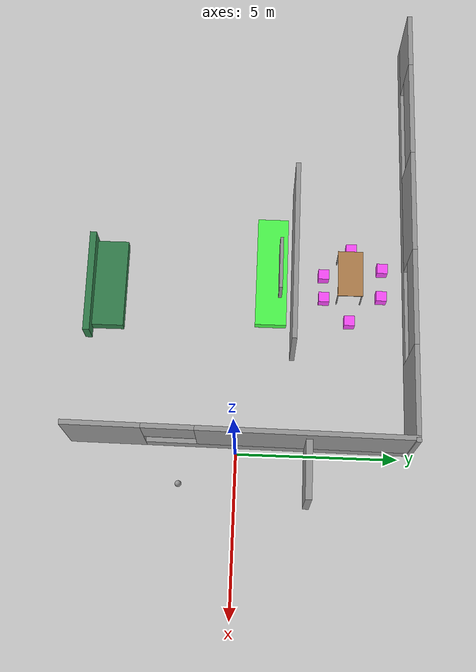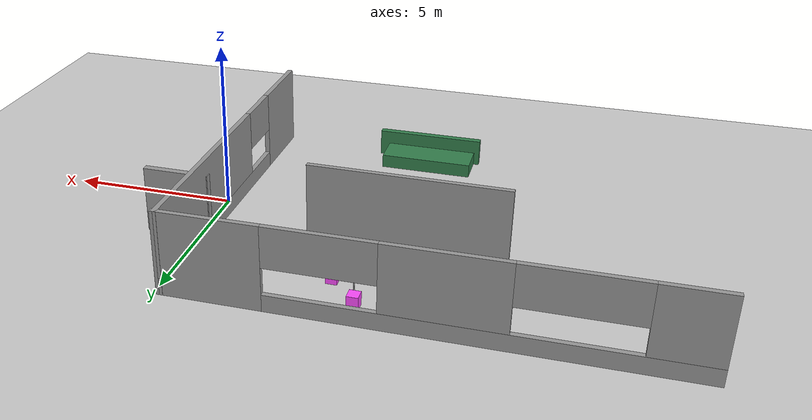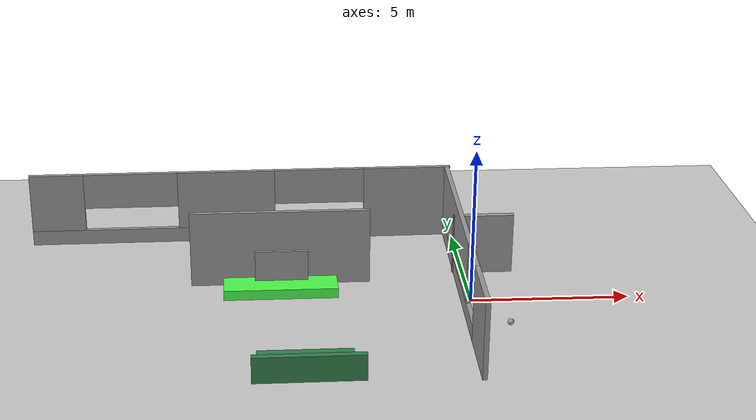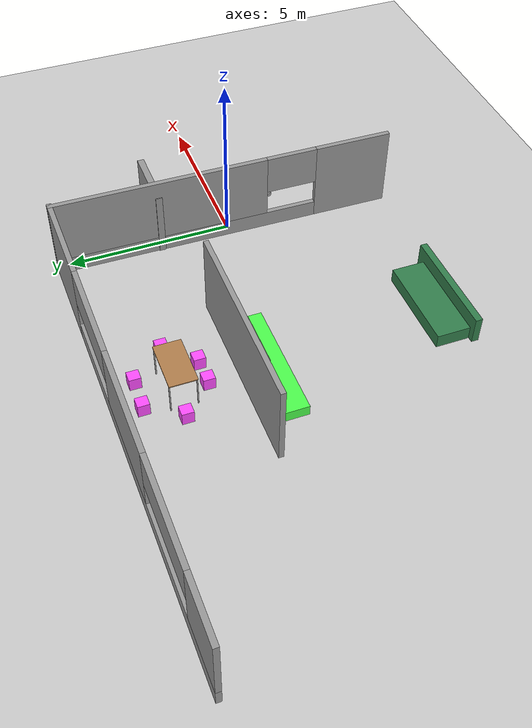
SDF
<sdf version="1.7">
 <world name="default">
  <model name="ground_plane">
   <static>1</static>
   <link name="link">
    <collision name="collision">
     <geometry><plane><normal>0 0 1</normal><size>100 100</size></plane></geometry>
     <surface><friction><ode><mu>100</mu><mu2>50</mu2></ode></friction></surface>
    </collision>
    <visual name="visual">
     <cast_shadows>0</cast_shadows>
     <geometry><plane><normal>0 0 1</normal><size>100 100</size></plane></geometry>
     <material>
      <script><uri>file://media/materials/scripts/gazebo.material</uri><name>Gazebo/Grey</name></script>
     </material>
    </visual>
   </link>
  </model>
  <model name="table">
   <static>1</static>
   <link name="link">
    <collision name="surface">
     <pose>0 0 1 0 -0 0</pose>
     <geometry><box><size>1.5 0.8 0.03</size></box></geometry>
     <surface><friction><ode><mu>0.6</mu><mu2>0.6</mu2></ode></friction></surface>
    </collision>
    <visual name="visual1">
     <pose>0 0 1 0 -0 0</pose>
     <geometry><box><size>1.5 0.8 0.03</size></box></geometry>
     <material>
      <script><uri>file://media/materials/scripts/gazebo.material</uri><name>Gazebo/Wood</name></script>
     </material>
    </visual>
    <collision name="front_left_leg">
     <pose>0.68 0.38 0.5 0 -0 0</pose>
     <geometry><cylinder><radius>0.02</radius><length>1</length></cylinder></geometry>
    </collision>
    <visual name="front_left_leg">
     <pose>0.68 0.38 0.5 0 -0 0</pose>
     <geometry><cylinder><radius>0.02</radius><length>1</length></cylinder></geometry>
     <material>
      <script><uri>file://media/materials/scripts/gazebo.material</uri><name>Gazebo/Grey</name></script>
     </material>
    </visual>
    <collision name="front_right_leg">
     <pose>0.68 -0.38 0.5 0 -0 0</pose>
     <geometry><cylinder><radius>0.02</radius><length>1</length></cylinder></geometry>
    </collision>
    <visual name="front_right_leg">
     <pose>0.68 -0.38 0.5 0 -0 0</pose>
     <geometry><cylinder><radius>0.02</radius><length>1</length></cylinder></geometry>
     <material>
      <script><uri>file://media/materials/scripts/gazebo.material</uri><name>Gazebo/Grey</name></script>
     </material>
    </visual>
    <collision name="back_right_leg">
     <pose>-0.68 -0.38 0.5 0 -0 0</pose>
     <geometry><cylinder><radius>0.02</radius><length>1</length></cylinder></geometry>
    </collision>
    <visual name="back_right_leg">
     <pose>-0.68 -0.38 0.5 0 -0 0</pose>
     <geometry><cylinder><radius>0.02</radius><length>1</length></cylinder></geometry>
     <material>
      <script><uri>file://media/materials/scripts/gazebo.material</uri><name>Gazebo/Grey</name></script>
     </material>
    </visual>
    <collision name="back_left_leg">
     <pose>-0.68 0.38 0.5 0 -0 0</pose>
     <geometry><cylinder><radius>0.02</radius><length>1</length></cylinder></geometry>
    </collision>
    <visual name="back_left_leg">
     <pose>-0.68 0.38 0.5 0 -0 0</pose>
     <geometry><cylinder><radius>0.02</radius><length>1</length></cylinder></geometry>
     <material>
      <script><uri>file://media/materials/scripts/gazebo.material</uri><name>Gazebo/Grey</name></script>
     </material>
    </visual>
   </link>
   <pose>-5.74042 3.44981 0 0 -0 0</pose>
  </model>
  <model name="unit_box_1">
   <link name="link">
    <pose>-0.362348 -0.121624 0 0 -0 0</pose>
    <inertial>
     <mass>1</mass>
     <inertia>
      <ixx>0.166667</ixx>
      <ixy>0</ixy>
      <ixz>0</ixz>
      <iyy>0.166667</iyy>
      <iyz>0</iyz>
      <izz>0.166667</izz>
     </inertia>
    </inertial>
    <visual name="visual">
     <geometry><box><size>0.32527 0.342485 0.391926</size></box></geometry>
     <material>
      <script><name>Gazebo/Grey</name><uri>file://media/materials/scripts/gazebo.material</uri></script>
      <shader type="pixel"><normal_map>__default__</normal_map></shader>
      <ambient>1 0.3 1 1</ambient>
      <diffuse>0.7 0.7 0.7 1</diffuse>
      <specular>0.01 0.01 0.01 1</specular>
      <emissive>0 0 0 1</emissive>
     </material>
    </visual>
    <collision name="collision">
     <geometry><box><size>0.32527 0.342485 0.391926</size></box></geometry>
     <surface>
      <friction>
       <ode><mu>1</mu><mu2>1</mu2><fdir1>0 0 0</fdir1><slip1>0</slip1><slip2>0</slip2></ode>
       <torsional>
        <coefficient>1</coefficient>
        <patch_radius>0</patch_radius>
        <surface_radius>0</surface_radius>
        <use_patch_radius>1</use_patch_radius>
        <ode><slip>0</slip></ode>
       </torsional>
      </friction>
      <bounce><restitution_coefficient>0</restitution_coefficient><threshold>1e+06</threshold></bounce>
      <contact>
       <collide_without_contact>0</collide_without_contact>
       <collide_without_contact_bitmask>1</collide_without_contact_bitmask>
       <collide_bitmask>1</collide_bitmask>
       <ode>
        <soft_cfm>0</soft_cfm>
        <soft_erp>0.2</soft_erp>
        <kp>1e+13</kp>
        <kd>1</kd>
        <max_vel>0.01</max_vel>
        <min_depth>0</min_depth>
       </ode>
       <bullet>
        <split_impulse>1</split_impulse>
        <split_impulse_penetration_threshold>-0.01</split_impulse_penetration_threshold>
        <soft_cfm>0</soft_cfm>
        <soft_erp>0.2</soft_erp>
        <kp>1e+13</kp>
        <kd>1</kd>
       </bullet>
      </contact>
     </surface>
    </collision>
   </link>
   <link name="link_clone">
    <pose>-1.14011 -0.94502 0 0 -0 0</pose>
    <inertial>
     <mass>1</mass>
     <inertia>
      <ixx>0.166667</ixx>
      <ixy>0</ixy>
      <ixz>0</ixz>
      <iyy>0.166667</iyy>
      <iyz>0</iyz>
      <izz>0.166667</izz>
     </inertia>
    </inertial>
    <visual name="visual">
     <geometry><box><size>0.32527 0.342485 0.391926</size></box></geometry>
     <material>
      <script><name>Gazebo/Grey</name><uri>file://media/materials/scripts/gazebo.material</uri></script>
      <shader type="pixel"><normal_map>__default__</normal_map></shader>
      <ambient>1 0.3 1 1</ambient>
      <diffuse>0.7 0.7 0.7 1</diffuse>
      <specular>0.01 0.01 0.01 1</specular>
      <emissive>0 0 0 1</emissive>
     </material>
    </visual>
    <collision name="collision">
     <geometry><box><size>0.32527 0.342485 0.391926</size></box></geometry>
     <surface>
      <friction>
       <ode><mu>1</mu><mu2>1</mu2><fdir1>0 0 0</fdir1><slip1>0</slip1><slip2>0</slip2></ode>
       <torsional>
        <coefficient>1</coefficient>
        <patch_radius>0</patch_radius>
        <surface_radius>0</surface_radius>
        <use_patch_radius>1</use_patch_radius>
        <ode><slip>0</slip></ode>
       </torsional>
      </friction>
      <bounce><restitution_coefficient>0</restitution_coefficient><threshold>1e+06</threshold></bounce>
      <contact>
       <collide_without_contact>0</collide_without_contact>
       <collide_without_contact_bitmask>1</collide_without_contact_bitmask>
       <collide_bitmask>1</collide_bitmask>
       <ode>
        <soft_cfm>0</soft_cfm>
        <soft_erp>0.2</soft_erp>
        <kp>1e+13</kp>
        <kd>1</kd>
        <max_vel>0.01</max_vel>
        <min_depth>0</min_depth>
       </ode>
       <bullet>
        <split_impulse>1</split_impulse>
        <split_impulse_penetration_threshold>-0.01</split_impulse_penetration_threshold>
        <soft_cfm>0</soft_cfm>
        <soft_erp>0.2</soft_erp>
        <kp>1e+13</kp>
        <kd>1</kd>
       </bullet>
      </contact>
     </surface>
    </collision>
   </link>
   <link name="link_clone_0">
    <pose>-1.91265 -0.960406 0 0 -0 0</pose>
    <inertial>
     <mass>1</mass>
     <inertia>
      <ixx>0.166667</ixx>
      <ixy>0</ixy>
      <ixz>0</ixz>
      <iyy>0.166667</iyy>
      <iyz>0</iyz>
      <izz>0.166667</izz>
     </inertia>
    </inertial>
    <visual name="visual">
     <geometry><box><size>0.32527 0.342485 0.391926</size></box></geometry>
     <material>
      <script><name>Gazebo/Grey</name><uri>file://media/materials/scripts/gazebo.material</uri></script>
      <shader type="pixel"><normal_map>__default__</normal_map></shader>
      <ambient>1 0.3 1 1</ambient>
      <diffuse>0.7 0.7 0.7 1</diffuse>
      <specular>0.01 0.01 0.01 1</specular>
      <emissive>0 0 0 1</emissive>
     </material>
    </visual>
    <collision name="collision">
     <geometry><box><size>0.32527 0.342485 0.391926</size></box></geometry>
     <surface>
      <friction>
       <ode><mu>1</mu><mu2>1</mu2><fdir1>0 0 0</fdir1><slip1>0</slip1><slip2>0</slip2></ode>
       <torsional>
        <coefficient>1</coefficient>
        <patch_radius>0</patch_radius>
        <surface_radius>0</surface_radius>
        <use_patch_radius>1</use_patch_radius>
        <ode><slip>0</slip></ode>
       </torsional>
      </friction>
      <bounce><restitution_coefficient>0</restitution_coefficient><threshold>1e+06</threshold></bounce>
      <contact>
       <collide_without_contact>0</collide_without_contact>
       <collide_without_contact_bitmask>1</collide_without_contact_bitmask>
       <collide_bitmask>1</collide_bitmask>
       <ode>
        <soft_cfm>0</soft_cfm>
        <soft_erp>0.2</soft_erp>
        <kp>1e+13</kp>
        <kd>1</kd>
        <max_vel>0.01</max_vel>
        <min_depth>0</min_depth>
       </ode>
       <bullet>
        <split_impulse>1</split_impulse>
        <split_impulse_penetration_threshold>-0.01</split_impulse_penetration_threshold>
        <soft_cfm>0</soft_cfm>
        <soft_erp>0.2</soft_erp>
        <kp>1e+13</kp>
        <kd>1</kd>
       </bullet>
      </contact>
     </surface>
    </collision>
   </link>
   <link name="link_clone_1">
    <pose>-2.81439 -0.071099 0 0 -0 0</pose>
    <inertial>
     <mass>1</mass>
     <inertia>
      <ixx>0.166667</ixx>
      <ixy>0</ixy>
      <ixz>0</ixz>
      <iyy>0.166667</iyy>
      <iyz>0</iyz>
      <izz>0.166667</izz>
     </inertia>
    </inertial>
    <visual name="visual">
     <geometry><box><size>0.32527 0.342485 0.391926</size></box></geometry>
     <material>
      <script><name>Gazebo/Grey</name><uri>file://media/materials/scripts/gazebo.material</uri></script>
      <shader type="pixel"><normal_map>__default__</normal_map></shader>
      <ambient>1 0.3 1 1</ambient>
      <diffuse>0.7 0.7 0.7 1</diffuse>
      <specular>0.01 0.01 0.01 1</specular>
      <emissive>0 0 0 1</emissive>
     </material>
    </visual>
    <collision name="collision">
     <geometry><box><size>0.32527 0.342485 0.391926</size></box></geometry>
     <surface>
      <friction>
       <ode><mu>1</mu><mu2>1</mu2><fdir1>0 0 0</fdir1><slip1>0</slip1><slip2>0</slip2></ode>
       <torsional>
        <coefficient>1</coefficient>
        <patch_radius>0</patch_radius>
        <surface_radius>0</surface_radius>
        <use_patch_radius>1</use_patch_radius>
        <ode><slip>0</slip></ode>
       </torsional>
      </friction>
      <bounce><restitution_coefficient>0</restitution_coefficient><threshold>1e+06</threshold></bounce>
      <contact>
       <collide_without_contact>0</collide_without_contact>
       <collide_without_contact_bitmask>1</collide_without_contact_bitmask>
       <collide_bitmask>1</collide_bitmask>
       <ode>
        <soft_cfm>0</soft_cfm>
        <soft_erp>0.2</soft_erp>
        <kp>1e+13</kp>
        <kd>1</kd>
        <max_vel>0.01</max_vel>
        <min_depth>0</min_depth>
       </ode>
       <bullet>
        <split_impulse>1</split_impulse>
        <split_impulse_penetration_threshold>-0.01</split_impulse_penetration_threshold>
        <soft_cfm>0</soft_cfm>
        <soft_erp>0.2</soft_erp>
        <kp>1e+13</kp>
        <kd>1</kd>
       </bullet>
      </contact>
     </surface>
    </collision>
   </link>
   <link name="link_clone_2">
    <pose>-2.17183 0.931538 0 0 -0 0</pose>
    <inertial>
     <mass>1</mass>
     <inertia>
      <ixx>0.166667</ixx>
      <ixy>0</ixy>
      <ixz>0</ixz>
      <iyy>0.166667</iyy>
      <iyz>0</iyz>
      <izz>0.166667</izz>
     </inertia>
    </inertial>
    <visual name="visual">
     <geometry><box><size>0.32527 0.342485 0.391926</size></box></geometry>
     <material>
      <script><name>Gazebo/Grey</name><uri>file://media/materials/scripts/gazebo.material</uri></script>
      <shader type="pixel"><normal_map>__default__</normal_map></shader>
      <ambient>1 0.3 1 1</ambient>
      <diffuse>0.7 0.7 0.7 1</diffuse>
      <specular>0.01 0.01 0.01 1</specular>
      <emissive>0 0 0 1</emissive>
     </material>
    </visual>
    <collision name="collision">
     <geometry><box><size>0.32527 0.342485 0.391926</size></box></geometry>
     <surface>
      <friction>
       <ode><mu>1</mu><mu2>1</mu2><fdir1>0 0 0</fdir1><slip1>0</slip1><slip2>0</slip2></ode>
       <torsional>
        <coefficient>1</coefficient>
        <patch_radius>0</patch_radius>
        <surface_radius>0</surface_radius>
        <use_patch_radius>1</use_patch_radius>
        <ode><slip>0</slip></ode>
       </torsional>
      </friction>
      <bounce><restitution_coefficient>0</restitution_coefficient><threshold>1e+06</threshold></bounce>
      <contact>
       <collide_without_contact>0</collide_without_contact>
       <collide_without_contact_bitmask>1</collide_without_contact_bitmask>
       <collide_bitmask>1</collide_bitmask>
       <ode>
        <soft_cfm>0</soft_cfm>
        <soft_erp>0.2</soft_erp>
        <kp>1e+13</kp>
        <kd>1</kd>
        <max_vel>0.01</max_vel>
        <min_depth>0</min_depth>
       </ode>
       <bullet>
        <split_impulse>1</split_impulse>
        <split_impulse_penetration_threshold>-0.01</split_impulse_penetration_threshold>
        <soft_cfm>0</soft_cfm>
        <soft_erp>0.2</soft_erp>
        <kp>1e+13</kp>
        <kd>1</kd>
       </bullet>
      </contact>
     </surface>
    </collision>
   </link>
   <link name="link_clone_3">
    <pose>-1.22615 0.898021 0 0 -0 0</pose>
    <inertial>
     <mass>1</mass>
     <inertia>
      <ixx>0.166667</ixx>
      <ixy>0</ixy>
      <ixz>0</ixz>
      <iyy>0.166667</iyy>
      <iyz>0</iyz>
      <izz>0.166667</izz>
     </inertia>
    </inertial>
    <visual name="visual">
     <geometry><box><size>0.32527 0.342485 0.391926</size></box></geometry>
     <material>
      <script><name>Gazebo/Grey</name><uri>file://media/materials/scripts/gazebo.material</uri></script>
      <shader type="pixel"><normal_map>__default__</normal_map></shader>
      <ambient>1 0.3 1 1</ambient>
      <diffuse>0.7 0.7 0.7 1</diffuse>
      <specular>0.01 0.01 0.01 1</specular>
      <emissive>0 0 0 1</emissive>
     </material>
    </visual>
    <collision name="collision">
     <geometry><box><size>0.32527 0.342485 0.391926</size></box></geometry>
     <surface>
      <friction>
       <ode><mu>1</mu><mu2>1</mu2><fdir1>0 0 0</fdir1><slip1>0</slip1><slip2>0</slip2></ode>
       <torsional>
        <coefficient>1</coefficient>
        <patch_radius>0</patch_radius>
        <surface_radius>0</surface_radius>
        <use_patch_radius>1</use_patch_radius>
        <ode><slip>0</slip></ode>
       </torsional>
      </friction>
      <bounce><restitution_coefficient>0</restitution_coefficient><threshold>1e+06</threshold></bounce>
      <contact>
       <collide_without_contact>0</collide_without_contact>
       <collide_without_contact_bitmask>1</collide_without_contact_bitmask>
       <collide_bitmask>1</collide_bitmask>
       <ode>
        <soft_cfm>0</soft_cfm>
        <soft_erp>0.2</soft_erp>
        <kp>1e+13</kp>
        <kd>1</kd>
        <max_vel>0.01</max_vel>
        <min_depth>0</min_depth>
       </ode>
       <bullet>
        <split_impulse>1</split_impulse>
        <split_impulse_penetration_threshold>-0.01</split_impulse_penetration_threshold>
        <soft_cfm>0</soft_cfm>
        <soft_erp>0.2</soft_erp>
        <kp>1e+13</kp>
        <kd>1</kd>
       </bullet>
      </contact>
     </surface>
    </collision>
   </link>
   <static>0</static>
   <pose>-4.01366 3.59467 0.195963 0 -0 0</pose>
  </model>
  <model name="TV_stand">
   <link name="link">
    <inertial>
     <mass>1.21546</mass>
     <inertia><ixx>0.112011</ixx><ixy>0</ixy><ixz>0</ixz><iyy>1.34483</iyy><iyz>0</iyz><izz>1.4354</izz></inertia>
    </inertial>
    <visual name="visual">
     <geometry><box><size>3.62925 1 0.32537</size></box></geometry>
     <material>
      <script><name>Gazebo/Grey</name><uri>file://media/materials/scripts/gazebo.material</uri></script>
      <shader type="pixel"><normal_map>__default__</normal_map></shader>
      <ambient>0.3 1 0.3 0</ambient>
      <diffuse>0.7 0.7 0.7 1</diffuse>
      <specular>0.01 0.01 0.01 1</specular>
      <emissive>0 0 0 1</emissive>
     </material>
    </visual>
    <collision name="collision">
     <geometry><box><size>3.62925 1 0.32537</size></box></geometry>
     <surface>
      <friction>
       <ode><mu>1</mu><mu2>1</mu2><fdir1>0 0 0</fdir1><slip1>0</slip1><slip2>0</slip2></ode>
       <torsional>
        <coefficient>1</coefficient>
        <patch_radius>0</patch_radius>
        <surface_radius>0</surface_radius>
        <use_patch_radius>1</use_patch_radius>
        <ode><slip>0</slip></ode>
       </torsional>
      </friction>
      <bounce><restitution_coefficient>0</restitution_coefficient><threshold>1e+06</threshold></bounce>
      <contact>
       <collide_without_contact>0</collide_without_contact>
       <collide_without_contact_bitmask>1</collide_without_contact_bitmask>
       <collide_bitmask>1</collide_bitmask>
       <ode>
        <soft_cfm>0</soft_cfm>
        <soft_erp>0.2</soft_erp>
        <kp>1e+13</kp>
        <kd>1</kd>
        <max_vel>0.01</max_vel>
        <min_depth>0</min_depth>
       </ode>
       <bullet>
        <split_impulse>1</split_impulse>
        <split_impulse_penetration_threshold>-0.01</split_impulse_penetration_threshold>
        <soft_cfm>0</soft_cfm>
        <soft_erp>0.2</soft_erp>
        <kp>1e+13</kp>
        <kd>1</kd>
       </bullet>
      </contact>
     </surface>
    </collision>
   </link>
   <static>0</static>
   <pose>-5.9855 0.954486 0.155942 -0.006462 7.9e-05 -0.000132</pose>
  </model>
  <model name="TV">
   <link name="link">
    <pose>0.00429 1.90308 0 0 -0 0</pose>
    <inertial>
     <mass>0.180603</mass>
     <inertia>
      <ixx>0.0152212</ixx>
      <ixy>0</ixy>
      <ixz>0</ixz>
      <iyy>0.0582402</iyy>
      <iyz>0</iyz>
      <izz>0.043361</izz>
     </inertia>
    </inertial>
    <visual name="visual">
     <geometry><box><size>1.69403 0.106591 1</size></box></geometry>
     <material>
      <script><name>Gazebo/Grey</name><uri>file://media/materials/scripts/gazebo.material</uri></script>
      <shader type="pixel"><normal_map>__default__</normal_map></shader>
      <ambient>0.3 0.3 0.3 1</ambient>
      <diffuse>0.7 0.7 0.7 1</diffuse>
      <specular>0.01 0.01 0.01 1</specular>
      <emissive>0 0 0 1</emissive>
     </material>
    </visual>
    <collision name="collision">
     <geometry><box><size>1.69403 0.106591 1</size></box></geometry>
     <surface>
      <friction>
       <ode><mu>1</mu><mu2>1</mu2><fdir1>0 0 0</fdir1><slip1>0</slip1><slip2>0</slip2></ode>
       <torsional>
        <coefficient>1</coefficient>
        <patch_radius>0</patch_radius>
        <surface_radius>0</surface_radius>
        <use_patch_radius>1</use_patch_radius>
        <ode><slip>0</slip></ode>
       </torsional>
      </friction>
      <bounce><restitution_coefficient>0</restitution_coefficient><threshold>1e+06</threshold></bounce>
      <contact>
       <collide_without_contact>0</collide_without_contact>
       <collide_without_contact_bitmask>1</collide_without_contact_bitmask>
       <collide_bitmask>1</collide_bitmask>
       <ode>
        <soft_cfm>0</soft_cfm>
        <soft_erp>0.2</soft_erp>
        <kp>1e+13</kp>
        <kd>1</kd>
        <max_vel>0.01</max_vel>
        <min_depth>0</min_depth>
       </ode>
       <bullet>
        <split_impulse>1</split_impulse>
        <split_impulse_penetration_threshold>-0.01</split_impulse_penetration_threshold>
        <soft_cfm>0</soft_cfm>
        <soft_erp>0.2</soft_erp>
        <kp>1e+13</kp>
        <kd>1</kd>
       </bullet>
      </contact>
     </surface>
    </collision>
   </link>
   <static>0</static>
   <pose>-5.94022 -0.667364 0.829201 -0.006512 9.9e-05 0.003024</pose>
  </model>
  <model name="couch_base">
   <link name="link">
    <inertial>
     <mass>1</mass>
     <inertia>
      <ixx>0.166667</ixx>
      <ixy>0</ixy>
      <ixz>0</ixz>
      <iyy>0.166667</iyy>
      <iyz>0</iyz>
      <izz>0.166667</izz>
     </inertia>
    </inertial>
    <visual name="visual">
     <geometry><box><size>2.85561 1 0.415231</size></box></geometry>
     <material>
      <script><name>Gazebo/Grey</name><uri>file://media/materials/scripts/gazebo.material</uri></script>
      <shader type="pixel"><normal_map>__default__</normal_map></shader>
      <ambient>0.2 0.5 0.3 1</ambient>
      <diffuse>0.7 0.7 0.7 1</diffuse>
      <specular>0.01 0.01 0.01 1</specular>
      <emissive>0 0 0 1</emissive>
     </material>
    </visual>
    <collision name="collision">
     <geometry><box><size>2.85561 1 0.415231</size></box></geometry>
     <surface>
      <friction>
       <ode><mu>1</mu><mu2>1</mu2><fdir1>0 0 0</fdir1><slip1>0</slip1><slip2>0</slip2></ode>
       <torsional>
        <coefficient>1</coefficient>
        <patch_radius>0</patch_radius>
        <surface_radius>0</surface_radius>
        <use_patch_radius>1</use_patch_radius>
        <ode><slip>0</slip></ode>
       </torsional>
      </friction>
      <bounce><restitution_coefficient>0</restitution_coefficient><threshold>1e+06</threshold></bounce>
      <contact>
       <collide_without_contact>0</collide_without_contact>
       <collide_without_contact_bitmask>1</collide_without_contact_bitmask>
       <collide_bitmask>1</collide_bitmask>
       <ode>
        <soft_cfm>0</soft_cfm>
        <soft_erp>0.2</soft_erp>
        <kp>1e+13</kp>
        <kd>1</kd>
        <max_vel>0.01</max_vel>
        <min_depth>0</min_depth>
       </ode>
       <bullet>
        <split_impulse>1</split_impulse>
        <split_impulse_penetration_threshold>-0.01</split_impulse_penetration_threshold>
        <soft_cfm>0</soft_cfm>
        <soft_erp>0.2</soft_erp>
        <kp>1e+13</kp>
        <kd>1</kd>
       </bullet>
      </contact>
     </surface>
    </collision>
   </link>
   <static>0</static>
   <pose>-5.39069 -4.25211 0.207611 1e-05 -0 0.000544</pose>
  </model>
  <model name="couch_back">
   <link name="link">
    <inertial>
     <mass>1</mass>
     <inertia>
      <ixx>0.166667</ixx>
      <ixy>0</ixy>
      <ixz>0</ixz>
      <iyy>0.166667</iyy>
      <iyz>0</iyz>
      <izz>0.166667</izz>
     </inertia>
    </inertial>
    <visual name="visual">
     <geometry><box><size>3.32313 0.208176 0.825723</size></box></geometry>
     <material>
      <script><name>Gazebo/Grey</name><uri>file://media/materials/scripts/gazebo.material</uri></script>
      <shader type="pixel"><normal_map>__default__</normal_map></shader>
      <ambient>0.2 0.5 0.3 1</ambient>
      <diffuse>0.7 0.7 0.7 1</diffuse>
      <specular>0.01 0.01 0.01 1</specular>
      <emissive>0 0 0 1</emissive>
     </material>
    </visual>
    <collision name="collision">
     <geometry><box><size>3.32313 0.208176 0.825723</size></box></geometry>
     <surface>
      <friction>
       <ode><mu>1</mu><mu2>1</mu2><fdir1>0 0 0</fdir1><slip1>0</slip1><slip2>0</slip2></ode>
       <torsional>
        <coefficient>1</coefficient>
        <patch_radius>0</patch_radius>
        <surface_radius>0</surface_radius>
        <use_patch_radius>1</use_patch_radius>
        <ode><slip>0</slip></ode>
       </torsional>
      </friction>
      <bounce><restitution_coefficient>0</restitution_coefficient><threshold>1e+06</threshold></bounce>
      <contact>
       <collide_without_contact>0</collide_without_contact>
       <collide_without_contact_bitmask>1</collide_without_contact_bitmask>
       <collide_bitmask>1</collide_bitmask>
       <ode>
        <soft_cfm>0</soft_cfm>
        <soft_erp>0.2</soft_erp>
        <kp>1e+13</kp>
        <kd>1</kd>
        <max_vel>0.01</max_vel>
        <min_depth>0</min_depth>
       </ode>
       <bullet>
        <split_impulse>1</split_impulse>
        <split_impulse_penetration_threshold>-0.01</split_impulse_penetration_threshold>
        <soft_cfm>0</soft_cfm>
        <soft_erp>0.2</soft_erp>
        <kp>1e+13</kp>
        <kd>1</kd>
       </bullet>
      </contact>
     </surface>
    </collision>
   </link>
   <static>0</static>
   <pose>-5.31851 -4.86676 0.412517 7e-06 0.000208 0.005095</pose>
  </model>
  <model name="Building">
   <link name="Door_5">
    <pose>12.2819 1.905 0 0 -0 0</pose>
    <visual name="Door_5_Visual">
     <pose>0 0 1 0 -0 0</pose>
     <geometry><box><size>1.95185 0.2 2</size></box></geometry>
     <material>
      <script><uri>file://media/materials/scripts/gazebo.material</uri><name>Gazebo/Grey</name></script>
      <shader type="pixel"/>
      <ambient>0.3 0.3 0.3 1</ambient>
      <diffuse>0.7 0.7 0.7 1</diffuse>
      <specular>0.01 0.01 0.01 1</specular>
      <emissive>0 0 0 1</emissive>
     </material>
    </visual>
    <collision name="Door_5_Collision">
     <pose>0 0 1 0 -0 0</pose>
     <geometry><box><size>1.95185 0.2 2</size></box></geometry>
     <surface>
      <friction>
       <ode><mu>1</mu><mu2>1</mu2><fdir1>0 0 0</fdir1><slip1>0</slip1><slip2>0</slip2></ode>
       <torsional>
        <coefficient>1</coefficient>
        <patch_radius>0</patch_radius>
        <surface_radius>0</surface_radius>
        <use_patch_radius>1</use_patch_radius>
        <ode><slip>0</slip></ode>
       </torsional>
      </friction>
      <bounce><restitution_coefficient>0</restitution_coefficient><threshold>1e+06</threshold></bounce>
      <contact>
       <collide_without_contact>0</collide_without_contact>
       <collide_without_contact_bitmask>1</collide_without_contact_bitmask>
       <collide_bitmask>1</collide_bitmask>
       <ode>
        <soft_cfm>0</soft_cfm>
        <soft_erp>0.2</soft_erp>
        <kp>1e+13</kp>
        <kd>1</kd>
        <max_vel>0.01</max_vel>
        <min_depth>0</min_depth>
       </ode>
       <bullet>
        <split_impulse>1</split_impulse>
        <split_impulse_penetration_threshold>-0.01</split_impulse_penetration_threshold>
        <soft_cfm>0</soft_cfm>
        <soft_erp>0.2</soft_erp>
        <kp>1e+13</kp>
        <kd>1</kd>
       </bullet>
      </contact>
     </surface>
    </collision>
   </link>
   <link name="Wall_32">
    <pose>5.67602 1.37908 0 0 -0 0</pose>
    <visual name="Wall_32_Visual">
     <pose>0 0 1.25 0 -0 0</pose>
     <geometry><box><size>5.75 0.15 2.5</size></box></geometry>
     <material>
      <script><uri>file://media/materials/scripts/gazebo.material</uri><name>Gazebo/Grey</name></script>
      <ambient>1 1 1 1</ambient>
      <shader type="pixel"/>
      <diffuse>0.7 0.7 0.7 1</diffuse>
      <specular>0.01 0.01 0.01 1</specular>
      <emissive>0 0 0 1</emissive>
     </material>
     <meta><layer>0</layer></meta>
    </visual>
    <collision name="Wall_32_Collision">
     <pose>0 0 1.25 0 -0 0</pose>
     <geometry><box><size>5.75 0.15 2.5</size></box></geometry>
     <surface>
      <friction>
       <ode><mu>1</mu><mu2>1</mu2><fdir1>0 0 0</fdir1><slip1>0</slip1><slip2>0</slip2></ode>
       <torsional>
        <coefficient>1</coefficient>
        <patch_radius>0</patch_radius>
        <surface_radius>0</surface_radius>
        <use_patch_radius>1</use_patch_radius>
        <ode><slip>0</slip></ode>
       </torsional>
      </friction>
      <bounce><restitution_coefficient>0</restitution_coefficient><threshold>1e+06</threshold></bounce>
      <contact>
       <collide_without_contact>0</collide_without_contact>
       <collide_without_contact_bitmask>1</collide_without_contact_bitmask>
       <collide_bitmask>1</collide_bitmask>
       <ode>
        <soft_cfm>0</soft_cfm>
        <soft_erp>0.2</soft_erp>
        <kp>1e+13</kp>
        <kd>1</kd>
        <max_vel>0.01</max_vel>
        <min_depth>0</min_depth>
       </ode>
       <bullet>
        <split_impulse>1</split_impulse>
        <split_impulse_penetration_threshold>-0.01</split_impulse_penetration_threshold>
        <soft_cfm>0</soft_cfm>
        <soft_erp>0.2</soft_erp>
        <kp>1e+13</kp>
        <kd>1</kd>
       </bullet>
      </contact>
     </surface>
    </collision>
   </link>
   <link name="Wall_5">
    <pose>11.3845 -0.152369 0 0 -0 1.55911</pose>
    <visual name="Wall_5_Visual_0">
     <pose>-4.07969 0 1.25 0 -0 0</pose>
     <geometry><box><size>2.37354 0.15 2.5</size></box></geometry>
     <material>
      <script><uri>file://media/materials/scripts/gazebo.material</uri><name>Gazebo/Grey</name></script>
      <ambient>1 1 1 1</ambient>
      <shader type="pixel"/>
      <diffuse>0.7 0.7 0.7 1</diffuse>
      <specular>0.01 0.01 0.01 1</specular>
      <emissive>0 0 0 1</emissive>
     </material>
     <meta><layer>0</layer></meta>
    </visual>
    <visual name="Wall_5_Visual_2">
     <pose>1.97107 0 1.5 0 -0 0</pose>
     <geometry><box><size>6.59077 0.15 2</size></box></geometry>
     <material>
      <script><uri>file://media/materials/scripts/gazebo.material</uri><name>Gazebo/Grey</name></script>
      <ambient>1 1 1 1</ambient>
      <shader type="pixel"/>
      <diffuse>0.7 0.7 0.7 1</diffuse>
      <specular>0.01 0.01 0.01 1</specular>
      <emissive>0 0 0 1</emissive>
     </material>
     <meta><layer>0</layer></meta>
    </visual>
    <visual name="Wall_5_Visual_1">
     <pose>1.18677 0 0.25 0 -0 0</pose>
     <geometry><box><size>8.15938 0.15 0.5</size></box></geometry>
     <material>
      <script><uri>file://media/materials/scripts/gazebo.material</uri><name>Gazebo/Grey</name></script>
      <ambient>1 1 1 1</ambient>
      <shader type="pixel"/>
      <diffuse>0.7 0.7 0.7 1</diffuse>
      <specular>0.01 0.01 0.01 1</specular>
      <emissive>0 0 0 1</emissive>
     </material>
     <meta><layer>0</layer></meta>
    </visual>
    <visual name="Wall_5_Visual_3">
     <pose>-2.10861 0 1.9 0 -0 0</pose>
     <geometry><box><size>1.5686 0.15 1.2</size></box></geometry>
     <material>
      <script><uri>file://media/materials/scripts/gazebo.material</uri><name>Gazebo/Grey</name></script>
      <ambient>1 1 1 1</ambient>
      <shader type="pixel"/>
      <diffuse>0.7 0.7 0.7 1</diffuse>
      <specular>0.01 0.01 0.01 1</specular>
      <emissive>0 0 0 1</emissive>
     </material>
     <meta><layer>0</layer></meta>
    </visual>
    <collision name="Wall_5_Collision_0">
     <pose>-4.07969 0 1.25 0 -0 0</pose>
     <geometry><box><size>2.37354 0.15 2.5</size></box></geometry>
     <surface>
      <friction>
       <ode><mu>1</mu><mu2>1</mu2><fdir1>0 0 0</fdir1><slip1>0</slip1><slip2>0</slip2></ode>
       <torsional>
        <coefficient>1</coefficient>
        <patch_radius>0</patch_radius>
        <surface_radius>0</surface_radius>
        <use_patch_radius>1</use_patch_radius>
        <ode><slip>0</slip></ode>
       </torsional>
      </friction>
      <bounce><restitution_coefficient>0</restitution_coefficient><threshold>1e+06</threshold></bounce>
      <contact>
       <collide_without_contact>0</collide_without_contact>
       <collide_without_contact_bitmask>1</collide_without_contact_bitmask>
       <collide_bitmask>1</collide_bitmask>
       <ode>
        <soft_cfm>0</soft_cfm>
        <soft_erp>0.2</soft_erp>
        <kp>1e+13</kp>
        <kd>1</kd>
        <max_vel>0.01</max_vel>
        <min_depth>0</min_depth>
       </ode>
       <bullet>
        <split_impulse>1</split_impulse>
        <split_impulse_penetration_threshold>-0.01</split_impulse_penetration_threshold>
        <soft_cfm>0</soft_cfm>
        <soft_erp>0.2</soft_erp>
        <kp>1e+13</kp>
        <kd>1</kd>
       </bullet>
      </contact>
     </surface>
    </collision>
    <collision name="Wall_5_Collision_2">
     <pose>1.97107 0 1.5 0 -0 0</pose>
     <geometry><box><size>6.59077 0.15 2</size></box></geometry>
     <surface>
      <friction>
       <ode><mu>1</mu><mu2>1</mu2><fdir1>0 0 0</fdir1><slip1>0</slip1><slip2>0</slip2></ode>
       <torsional>
        <coefficient>1</coefficient>
        <patch_radius>0</patch_radius>
        <surface_radius>0</surface_radius>
        <use_patch_radius>1</use_patch_radius>
        <ode><slip>0</slip></ode>
       </torsional>
      </friction>
      <bounce><restitution_coefficient>0</restitution_coefficient><threshold>1e+06</threshold></bounce>
      <contact>
       <collide_without_contact>0</collide_without_contact>
       <collide_without_contact_bitmask>1</collide_without_contact_bitmask>
       <collide_bitmask>1</collide_bitmask>
       <ode>
        <soft_cfm>0</soft_cfm>
        <soft_erp>0.2</soft_erp>
        <kp>1e+13</kp>
        <kd>1</kd>
        <max_vel>0.01</max_vel>
        <min_depth>0</min_depth>
       </ode>
       <bullet>
        <split_impulse>1</split_impulse>
        <split_impulse_penetration_threshold>-0.01</split_impulse_penetration_threshold>
        <soft_cfm>0</soft_cfm>
        <soft_erp>0.2</soft_erp>
        <kp>1e+13</kp>
        <kd>1</kd>
       </bullet>
      </contact>
     </surface>
    </collision>
    <collision name="Wall_5_Collision_1">
     <pose>1.18677 0 0.25 0 -0 0</pose>
     <geometry><box><size>8.15938 0.15 0.5</size></box></geometry>
     <surface>
      <friction>
       <ode><mu>1</mu><mu2>1</mu2><fdir1>0 0 0</fdir1><slip1>0</slip1><slip2>0</slip2></ode>
       <torsional>
        <coefficient>1</coefficient>
        <patch_radius>0</patch_radius>
        <surface_radius>0</surface_radius>
        <use_patch_radius>1</use_patch_radius>
        <ode><slip>0</slip></ode>
       </torsional>
      </friction>
      <bounce><restitution_coefficient>0</restitution_coefficient><threshold>1e+06</threshold></bounce>
      <contact>
       <collide_without_contact>0</collide_without_contact>
       <collide_without_contact_bitmask>1</collide_without_contact_bitmask>
       <collide_bitmask>1</collide_bitmask>
       <ode>
        <soft_cfm>0</soft_cfm>
        <soft_erp>0.2</soft_erp>
        <kp>1e+13</kp>
        <kd>1</kd>
        <max_vel>0.01</max_vel>
        <min_depth>0</min_depth>
       </ode>
       <bullet>
        <split_impulse>1</split_impulse>
        <split_impulse_penetration_threshold>-0.01</split_impulse_penetration_threshold>
        <soft_cfm>0</soft_cfm>
        <soft_erp>0.2</soft_erp>
        <kp>1e+13</kp>
        <kd>1</kd>
       </bullet>
      </contact>
     </surface>
    </collision>
    <collision name="Wall_5_Collision_3">
     <pose>-2.10861 0 1.9 0 -0 0</pose>
     <geometry><box><size>1.5686 0.15 1.2</size></box></geometry>
     <surface>
      <friction>
       <ode><mu>1</mu><mu2>1</mu2><fdir1>0 0 0</fdir1><slip1>0</slip1><slip2>0</slip2></ode>
       <torsional>
        <coefficient>1</coefficient>
        <patch_radius>0</patch_radius>
        <surface_radius>0</surface_radius>
        <use_patch_radius>1</use_patch_radius>
        <ode><slip>0</slip></ode>
       </torsional>
      </friction>
      <bounce><restitution_coefficient>0</restitution_coefficient><threshold>1e+06</threshold></bounce>
      <contact>
       <collide_without_contact>0</collide_without_contact>
       <collide_without_contact_bitmask>1</collide_without_contact_bitmask>
       <collide_bitmask>1</collide_bitmask>
       <ode>
        <soft_cfm>0</soft_cfm>
        <soft_erp>0.2</soft_erp>
        <kp>1e+13</kp>
        <kd>1</kd>
        <max_vel>0.01</max_vel>
        <min_depth>0</min_depth>
       </ode>
       <bullet>
        <split_impulse>1</split_impulse>
        <split_impulse_penetration_threshold>-0.01</split_impulse_penetration_threshold>
        <soft_cfm>0</soft_cfm>
        <soft_erp>0.2</soft_erp>
        <kp>1e+13</kp>
        <kd>1</kd>
       </bullet>
      </contact>
     </surface>
    </collision>
   </link>
   <link name="Wall_7">
    <pose>4.45745 4.98169 0 0 0 -3.13348</pose>
    <visual name="Wall_7_Visual_0">
     <pose>-5.6305 0 1.25 0 -0 0</pose>
     <geometry><box><size>2.94586 0.15 2.5</size></box></geometry>
     <material>
      <script><uri>file://media/materials/scripts/gazebo.material</uri><name>Gazebo/Grey</name></script>
      <ambient>1 1 1 1</ambient>
      <shader type="pixel"/>
      <diffuse>0.7 0.7 0.7 1</diffuse>
      <specular>0.01 0.01 0.01 1</specular>
      <emissive>0 0 0 1</emissive>
     </material>
     <meta><layer>0</layer></meta>
    </visual>
    <visual name="Wall_7_Visual_2">
     <pose>0.51002 0 1.5 0 -0 0</pose>
     <geometry><box><size>3.28522 0.15 2</size></box></geometry>
     <material>
      <script><uri>file://media/materials/scripts/gazebo.material</uri><name>Gazebo/Grey</name></script>
      <ambient>1 1 1 1</ambient>
      <shader type="pixel"/>
      <diffuse>0.7 0.7 0.7 1</diffuse>
      <specular>0.01 0.01 0.01 1</specular>
      <emissive>0 0 0 1</emissive>
     </material>
     <meta><layer>0</layer></meta>
    </visual>
    <visual name="Wall_7_Visual_1">
     <pose>1.47293 0 0.25 0 -0 0</pose>
     <geometry><box><size>11.261 0.15 0.5</size></box></geometry>
     <material>
      <script><uri>file://media/materials/scripts/gazebo.material</uri><name>Gazebo/Grey</name></script>
      <ambient>1 1 1 1</ambient>
      <shader type="pixel"/>
      <diffuse>0.7 0.7 0.7 1</diffuse>
      <specular>0.01 0.01 0.01 1</specular>
      <emissive>0 0 0 1</emissive>
     </material>
     <meta><layer>0</layer></meta>
    </visual>
    <visual name="Wall_7_Visual_3">
     <pose>6.2012 0 1.5 0 -0 0</pose>
     <geometry><box><size>1.80445 0.15 2</size></box></geometry>
     <material>
      <script><uri>file://media/materials/scripts/gazebo.material</uri><name>Gazebo/Grey</name></script>
      <ambient>1 1 1 1</ambient>
      <shader type="pixel"/>
      <diffuse>0.7 0.7 0.7 1</diffuse>
      <specular>0.01 0.01 0.01 1</specular>
      <emissive>0 0 0 1</emissive>
     </material>
     <meta><layer>0</layer></meta>
    </visual>
    <visual name="Wall_7_Visual_4">
     <pose>-2.64508 0 1.9 0 -0 0</pose>
     <geometry><box><size>3.02498 0.15 1.2</size></box></geometry>
     <material>
      <script><uri>file://media/materials/scripts/gazebo.material</uri><name>Gazebo/Grey</name></script>
      <ambient>1 1 1 1</ambient>
      <shader type="pixel"/>
      <diffuse>0.7 0.7 0.7 1</diffuse>
      <specular>0.01 0.01 0.01 1</specular>
      <emissive>0 0 0 1</emissive>
     </material>
     <meta><layer>0</layer></meta>
    </visual>
    <visual name="Wall_7_Visual_5">
     <pose>3.7258 0 1.9 0 -0 0</pose>
     <geometry><box><size>3.14635 0.15 1.2</size></box></geometry>
     <material>
      <script><uri>file://media/materials/scripts/gazebo.material</uri><name>Gazebo/Grey</name></script>
      <ambient>1 1 1 1</ambient>
      <shader type="pixel"/>
      <diffuse>0.7 0.7 0.7 1</diffuse>
      <specular>0.01 0.01 0.01 1</specular>
      <emissive>0 0 0 1</emissive>
     </material>
     <meta><layer>0</layer></meta>
    </visual>
    <collision name="Wall_7_Collision_0">
     <pose>-5.6305 0 1.25 0 -0 0</pose>
     <geometry><box><size>2.94586 0.15 2.5</size></box></geometry>
     <surface>
      <friction>
       <ode><mu>1</mu><mu2>1</mu2><fdir1>0 0 0</fdir1><slip1>0</slip1><slip2>0</slip2></ode>
       <torsional>
        <coefficient>1</coefficient>
        <patch_radius>0</patch_radius>
        <surface_radius>0</surface_radius>
        <use_patch_radius>1</use_patch_radius>
        <ode><slip>0</slip></ode>
       </torsional>
      </friction>
      <bounce><restitution_coefficient>0</restitution_coefficient><threshold>1e+06</threshold></bounce>
      <contact>
       <collide_without_contact>0</collide_without_contact>
       <collide_without_contact_bitmask>1</collide_without_contact_bitmask>
       <collide_bitmask>1</collide_bitmask>
       <ode>
        <soft_cfm>0</soft_cfm>
        <soft_erp>0.2</soft_erp>
        <kp>1e+13</kp>
        <kd>1</kd>
        <max_vel>0.01</max_vel>
        <min_depth>0</min_depth>
       </ode>
       <bullet>
        <split_impulse>1</split_impulse>
        <split_impulse_penetration_threshold>-0.01</split_impulse_penetration_threshold>
        <soft_cfm>0</soft_cfm>
        <soft_erp>0.2</soft_erp>
        <kp>1e+13</kp>
        <kd>1</kd>
       </bullet>
      </contact>
     </surface>
    </collision>
    <collision name="Wall_7_Collision_1">
     <pose>1.47293 0 0.25 0 -0 0</pose>
     <geometry><box><size>11.261 0.15 0.5</size></box></geometry>
     <surface>
      <friction>
       <ode><mu>1</mu><mu2>1</mu2><fdir1>0 0 0</fdir1><slip1>0</slip1><slip2>0</slip2></ode>
       <torsional>
        <coefficient>1</coefficient>
        <patch_radius>0</patch_radius>
        <surface_radius>0</surface_radius>
        <use_patch_radius>1</use_patch_radius>
        <ode><slip>0</slip></ode>
       </torsional>
      </friction>
      <bounce><restitution_coefficient>0</restitution_coefficient><threshold>1e+06</threshold></bounce>
      <contact>
       <collide_without_contact>0</collide_without_contact>
       <collide_without_contact_bitmask>1</collide_without_contact_bitmask>
       <collide_bitmask>1</collide_bitmask>
       <ode>
        <soft_cfm>0</soft_cfm>
        <soft_erp>0.2</soft_erp>
        <kp>1e+13</kp>
        <kd>1</kd>
        <max_vel>0.01</max_vel>
        <min_depth>0</min_depth>
       </ode>
       <bullet>
        <split_impulse>1</split_impulse>
        <split_impulse_penetration_threshold>-0.01</split_impulse_penetration_threshold>
        <soft_cfm>0</soft_cfm>
        <soft_erp>0.2</soft_erp>
        <kp>1e+13</kp>
        <kd>1</kd>
       </bullet>
      </contact>
     </surface>
    </collision>
    <collision name="Wall_7_Collision_2">
     <pose>0.51002 0 1.5 0 -0 0</pose>
     <geometry><box><size>3.28522 0.15 2</size></box></geometry>
     <surface>
      <friction>
       <ode><mu>1</mu><mu2>1</mu2><fdir1>0 0 0</fdir1><slip1>0</slip1><slip2>0</slip2></ode>
       <torsional>
        <coefficient>1</coefficient>
        <patch_radius>0</patch_radius>
        <surface_radius>0</surface_radius>
        <use_patch_radius>1</use_patch_radius>
        <ode><slip>0</slip></ode>
       </torsional>
      </friction>
      <bounce><restitution_coefficient>0</restitution_coefficient><threshold>1e+06</threshold></bounce>
      <contact>
       <collide_without_contact>0</collide_without_contact>
       <collide_without_contact_bitmask>1</collide_without_contact_bitmask>
       <collide_bitmask>1</collide_bitmask>
       <ode>
        <soft_cfm>0</soft_cfm>
        <soft_erp>0.2</soft_erp>
        <kp>1e+13</kp>
        <kd>1</kd>
        <max_vel>0.01</max_vel>
        <min_depth>0</min_depth>
       </ode>
       <bullet>
        <split_impulse>1</split_impulse>
        <split_impulse_penetration_threshold>-0.01</split_impulse_penetration_threshold>
        <soft_cfm>0</soft_cfm>
        <soft_erp>0.2</soft_erp>
        <kp>1e+13</kp>
        <kd>1</kd>
       </bullet>
      </contact>
     </surface>
    </collision>
    <collision name="Wall_7_Collision_3">
     <pose>6.2012 0 1.5 0 -0 0</pose>
     <geometry><box><size>1.80445 0.15 2</size></box></geometry>
     <surface>
      <friction>
       <ode><mu>1</mu><mu2>1</mu2><fdir1>0 0 0</fdir1><slip1>0</slip1><slip2>0</slip2></ode>
       <torsional>
        <coefficient>1</coefficient>
        <patch_radius>0</patch_radius>
        <surface_radius>0</surface_radius>
        <use_patch_radius>1</use_patch_radius>
        <ode><slip>0</slip></ode>
       </torsional>
      </friction>
      <bounce><restitution_coefficient>0</restitution_coefficient><threshold>1e+06</threshold></bounce>
      <contact>
       <collide_without_contact>0</collide_without_contact>
       <collide_without_contact_bitmask>1</collide_without_contact_bitmask>
       <collide_bitmask>1</collide_bitmask>
       <ode>
        <soft_cfm>0</soft_cfm>
        <soft_erp>0.2</soft_erp>
        <kp>1e+13</kp>
        <kd>1</kd>
        <max_vel>0.01</max_vel>
        <min_depth>0</min_depth>
       </ode>
       <bullet>
        <split_impulse>1</split_impulse>
        <split_impulse_penetration_threshold>-0.01</split_impulse_penetration_threshold>
        <soft_cfm>0</soft_cfm>
        <soft_erp>0.2</soft_erp>
        <kp>1e+13</kp>
        <kd>1</kd>
       </bullet>
      </contact>
     </surface>
    </collision>
    <collision name="Wall_7_Collision_4">
     <pose>-2.64508 0 1.9 0 -0 0</pose>
     <geometry><box><size>3.02498 0.15 1.2</size></box></geometry>
     <surface>
      <friction>
       <ode><mu>1</mu><mu2>1</mu2><fdir1>0 0 0</fdir1><slip1>0</slip1><slip2>0</slip2></ode>
       <torsional>
        <coefficient>1</coefficient>
        <patch_radius>0</patch_radius>
        <surface_radius>0</surface_radius>
        <use_patch_radius>1</use_patch_radius>
        <ode><slip>0</slip></ode>
       </torsional>
      </friction>
      <bounce><restitution_coefficient>0</restitution_coefficient><threshold>1e+06</threshold></bounce>
      <contact>
       <collide_without_contact>0</collide_without_contact>
       <collide_without_contact_bitmask>1</collide_without_contact_bitmask>
       <collide_bitmask>1</collide_bitmask>
       <ode>
        <soft_cfm>0</soft_cfm>
        <soft_erp>0.2</soft_erp>
        <kp>1e+13</kp>
        <kd>1</kd>
        <max_vel>0.01</max_vel>
        <min_depth>0</min_depth>
       </ode>
       <bullet>
        <split_impulse>1</split_impulse>
        <split_impulse_penetration_threshold>-0.01</split_impulse_penetration_threshold>
        <soft_cfm>0</soft_cfm>
        <soft_erp>0.2</soft_erp>
        <kp>1e+13</kp>
        <kd>1</kd>
       </bullet>
      </contact>
     </surface>
    </collision>
    <collision name="Wall_7_Collision_5">
     <pose>3.7258 0 1.9 0 -0 0</pose>
     <geometry><box><size>3.14635 0.15 1.2</size></box></geometry>
     <surface>
      <friction>
       <ode><mu>1</mu><mu2>1</mu2><fdir1>0 0 0</fdir1><slip1>0</slip1><slip2>0</slip2></ode>
       <torsional>
        <coefficient>1</coefficient>
        <patch_radius>0</patch_radius>
        <surface_radius>0</surface_radius>
        <use_patch_radius>1</use_patch_radius>
        <ode><slip>0</slip></ode>
       </torsional>
      </friction>
      <bounce><restitution_coefficient>0</restitution_coefficient><threshold>1e+06</threshold></bounce>
      <contact>
       <collide_without_contact>0</collide_without_contact>
       <collide_without_contact_bitmask>1</collide_without_contact_bitmask>
       <collide_bitmask>1</collide_bitmask>
       <ode>
        <soft_cfm>0</soft_cfm>
        <soft_erp>0.2</soft_erp>
        <kp>1e+13</kp>
        <kd>1</kd>
        <max_vel>0.01</max_vel>
        <min_depth>0</min_depth>
       </ode>
       <bullet>
        <split_impulse>1</split_impulse>
        <split_impulse_penetration_threshold>-0.01</split_impulse_penetration_threshold>
        <soft_cfm>0</soft_cfm>
        <soft_erp>0.2</soft_erp>
        <kp>1e+13</kp>
        <kd>1</kd>
       </bullet>
      </contact>
     </surface>
    </collision>
   </link>
   <static>1</static>
   <pose>-11.6425 0.2878 0 0 -0 0</pose>
  </model>
  <model name="my_ball">
   <link name="link_0">
    <inertial>
     <mass>1</mass>
     <inertia><ixx>0.1</ixx><ixy>0</ixy><ixz>0</ixz><iyy>0.1</iyy><iyz>0</iyz><izz>0.1</izz></inertia>
    </inertial>
    <visual name="visual">
     <geometry><sphere><radius>0.1</radius></sphere></geometry>
     <material>
      <lighting>1</lighting>
      <script><uri>file://media/materials/scripts/gazebo.material</uri><name>Gazebo/Grey</name></script>
      <shader type="pixel"><normal_map>__default__</normal_map></shader>
      <ambient>1 1 1 1</ambient>
      <diffuse>1 1 1 1</diffuse>
      <specular>1 1 1 1</specular>
      <emissive>1 1 1 1</emissive>
     </material>
    </visual>
    <collision name="collision">
     <geometry><sphere><radius>0.1</radius></sphere></geometry>
     <surface>
      <friction>
       <ode><mu>1</mu><mu2>1</mu2><fdir1>0 0 0</fdir1><slip1>0</slip1><slip2>0</slip2></ode>
       <torsional>
        <coefficient>1</coefficient>
        <patch_radius>0</patch_radius>
        <surface_radius>0</surface_radius>
        <use_patch_radius>1</use_patch_radius>
        <ode><slip>0</slip></ode>
       </torsional>
      </friction>
      <bounce><restitution_coefficient>0</restitution_coefficient><threshold>1e+06</threshold></bounce>
      <contact>
       <collide_without_contact>0</collide_without_contact>
       <collide_without_contact_bitmask>1</collide_without_contact_bitmask>
       <collide_bitmask>1</collide_bitmask>
       <ode>
        <soft_cfm>0</soft_cfm>
        <soft_erp>0.2</soft_erp>
        <kp>1e+13</kp>
        <kd>1</kd>
        <max_vel>0.01</max_vel>
        <min_depth>0</min_depth>
       </ode>
       <bullet>
        <split_impulse>1</split_impulse>
        <split_impulse_penetration_threshold>-0.01</split_impulse_penetration_threshold>
        <soft_cfm>0</soft_cfm>
        <soft_erp>0.2</soft_erp>
        <kp>1e+13</kp>
        <kd>1</kd>
       </bullet>
      </contact>
     </surface>
    </collision>
   </link>
   <static>0</static>
   <pose>0.978342 -1.73267 0.1 0 -0 0</pose>
  </model>
 </world>
</sdf>
